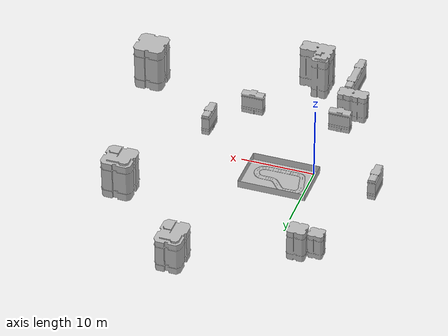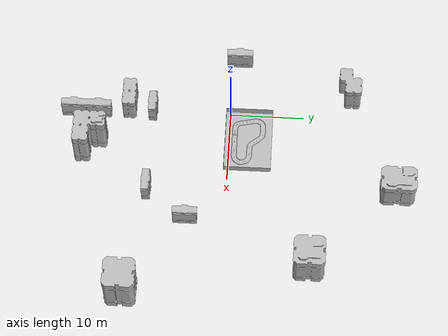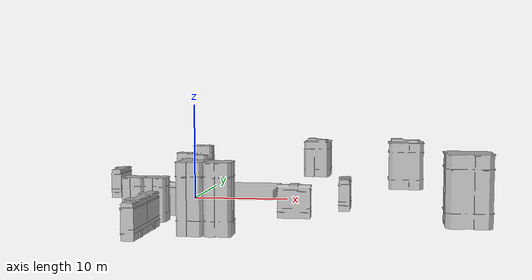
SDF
<?xml version="1.0"?>
<sdf version="1.4">
<model name="reInvent_base">
<link name="fullLink">
<collision name="collision">
<pose>0 0 0 0 0 0</pose>
<geometry>
<mesh>
<uri>model://meshes/reinvent/reinvent_base_wall_field_only.dae</uri>
</mesh>
</geometry>
</collision>
<visual name="visual">
<pose>0 0 0 0 0 0</pose>
<geometry>
<mesh>
<uri>model://meshes/reinvent_base_custom/field_road.dae</uri>
</mesh>
</geometry>
</visual>
</link>
<link name="walls">
<visual name="visual">
<pose>0 0 0 0 0 0</pose>
<geometry>
<mesh>
<uri>model://meshes/reinvent_base_custom/walls.dae</uri>
</mesh>
</geometry>
</visual>
</link>
<link name="outer_lines">
<visual name="visual">
<pose>0 0 0 0 0 0</pose>
<geometry>
<mesh>
<uri>model://meshes/reinvent_base_custom/outer_lines.dae</uri>
</mesh>
</geometry>
</visual>
</link>
<link name="center_line">
<visual name="visual">
<pose>0 0 0 0 0 0</pose>
<geometry>
<mesh>
<uri>model://meshes/reinvent_base_custom/center_line.dae</uri>
</mesh>
</geometry>
</visual>
</link>
<link name="finish_line">
<visual name="visual">
<pose>0 0 0 0 0 0</pose>
<geometry>
<mesh>
<uri>model://meshes/reinvent_base_custom/finish_line.dae</uri>
</mesh>
</geometry>
</visual>
</link>
<link name="building_city_01">
<visual name="visual">
<pose>0 0 0 0 0 0</pose>
<geometry>
<mesh>
<uri>model://meshes/Vegas_track/Re_Invent_track_building_city_01.dae</uri>
</mesh>
</geometry>
</visual>
</link>
<link name="building_city_02">
<visual name="visual">
<pose>0 0 0 0 0 0</pose>
<geometry>
<mesh>
<uri>model://meshes/Vegas_track/Re_Invent_track_building_city_02.dae</uri>
</mesh>
</geometry>
</visual>
</link>
<static>1</static>
</model>
</sdf>
